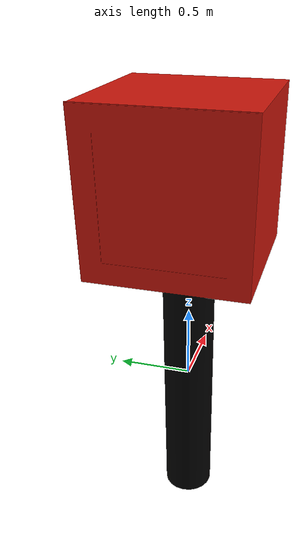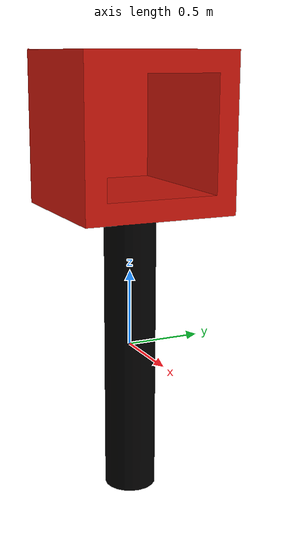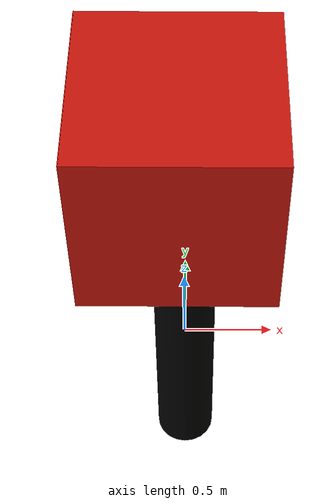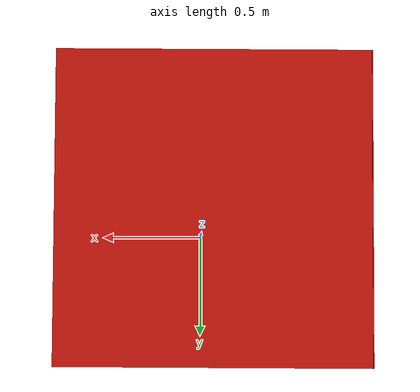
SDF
<?xml version='1.0'?>
<sdf version='1.6'>
  <model name="orange_box">
    <static>true</static>
    <pose>0 0 0 0 0 0</pose>

    <link name="orange_box">
      <pose>0 0 1 0 0 0</pose>
      <visual name="box">
        <geometry>
          <mesh>
            <uri>model://orange_box/orange_box.dae</uri>
          </mesh>
        </geometry>
      </visual>
    </link>

  </model>
</sdf>
